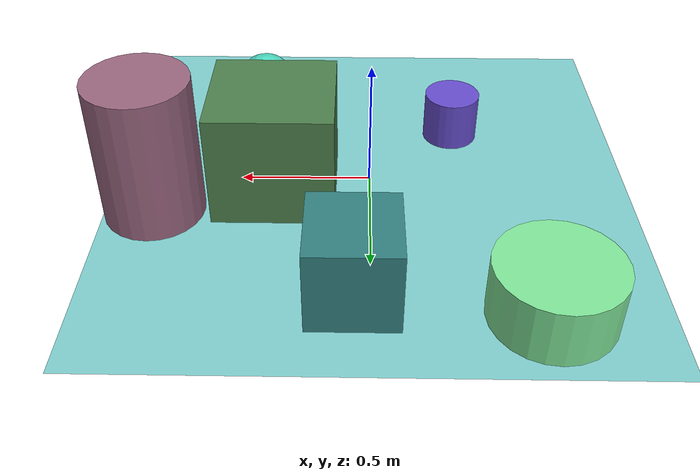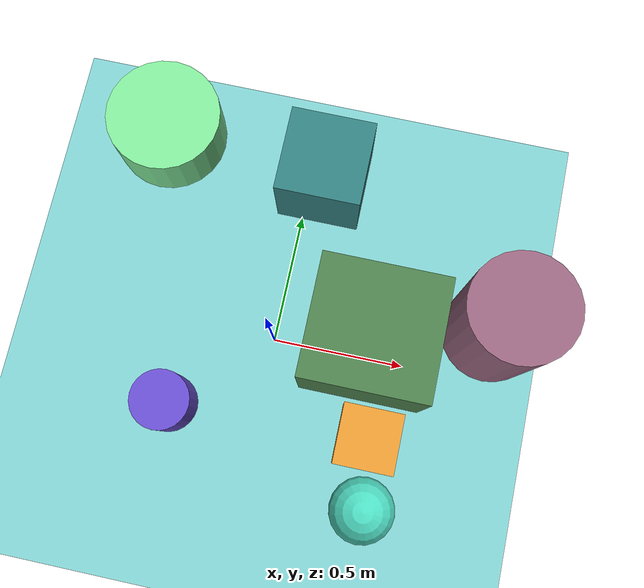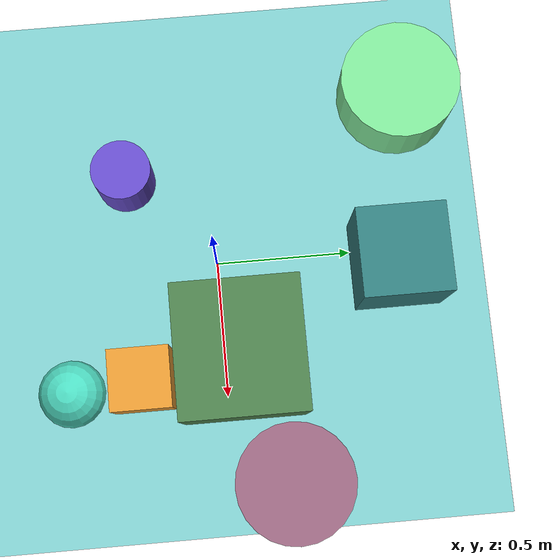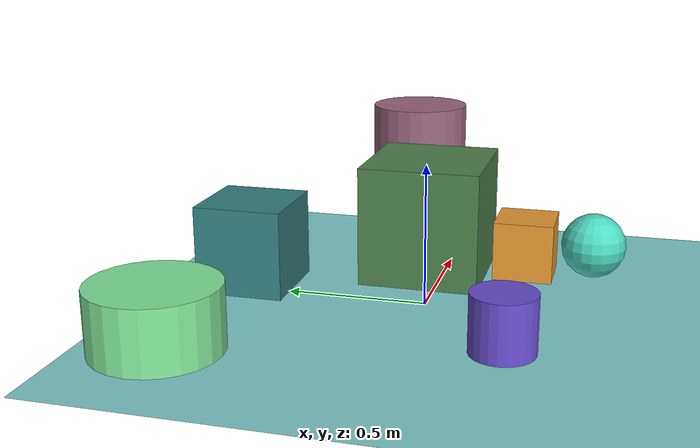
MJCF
<mujoco>
   <asset>
<texture type="skybox" builtin="gradient" rgb1="0.9 0.3 0.7" rgb2="0.7 0.4 0.0" width="256" height="256"/>
<texture name="checker_0" builtin="checker" type="2d" rgb1="0.7 0.7 0.1" rgb2="0.5 0.1 0.9" width="200" height="200"/>
<texture name="flat_1" builtin="flat" rgb1="0.2 0.5 0.5" rgb2="0.2 0.5 0.5"  width="200" height="200"/>
<texture name="checker_2" builtin="checker" type="2d" rgb1="0.8 0.6 0.7" rgb2="0.0 0.0 0.9" width="200" height="200"/>
<texture name="flat_3" builtin="flat" rgb1="0.5 0.9 0.6" rgb2="0.5 0.9 0.6"  width="200" height="200"/>
<texture name="gradient_4" builtin="gradient" rgb1="0.2 0.9 0.9" rgb2="0.4 0.8 0.6" width="200" height="200"/>
<texture name="flat_5" builtin="flat" rgb1="0.3 0.5 0.3" rgb2="0.3 0.5 0.3"  width="200" height="200"/>
<texture name="checker_6" builtin="checker" type="2d" rgb1="0.9 1.0 0.0" rgb2="0.9 0.2 0.4" width="200" height="200"/><material name="checker_0_mat" reflectance="0" texrepeat="5 5" texture="checker_0" texuniform="false" />
<material name="flat_1_mat" reflectance="0" texture="flat_1" texuniform="true"/>
<material name="checker_2_mat" reflectance="0" texrepeat="6 6" texture="checker_2" texuniform="false" />
<material name="flat_3_mat" reflectance="0" texture="flat_3" texuniform="true"/>
<material name="gradient_4_mat" reflectance="0" texture="gradient_4" texuniform="true"/>
<material name="flat_5_mat" reflectance="0" texture="flat_5" texuniform="true"/>
<material name="checker_6_mat" reflectance="0" texrepeat="7 7" texture="checker_6" texuniform="false" />
   </asset>

   <worldbody>
      <light diffuse=".9 .9 .9" pos="0 0 3" dir="0 0 -1"/>
     <geom type="plane" size="1 1 0.1" rgba="0.5 0.8 0.8 1"/>
<geom type="cylinder" pos="0.81 0.2 0.28" size="0.19 0.28 0.28" material="checker_0_mat" />
<geom type="box" pos="0.06 0.66 0.16" size="0.16 0.16 0.16" material="flat_1_mat" />
<geom type="cylinder" pos="-0.34 -0.32 0.1" size="0.11 0.1 0.1" material="checker_2_mat" />
<geom type="cylinder" pos="-0.59 0.73 0.11" size="0.22 0.11 0.11" material="flat_3_mat" />
<geom type="sphere" pos="0.45 -0.55 0.12" size="0.12 0.12 0.12" material="gradient_4_mat" />
<geom type="box" pos="0.36 0.06 0.22" size="0.23 0.22 0.22" material="flat_5_mat" />
<geom type="box" pos="0.42 -0.3 0.11" size="0.11 0.11 0.11" material="checker_6_mat" /><camera euler="60 0 180" fovy="60" name="camera_a" pos="0 -1.5 1"></camera>   </worldbody>
</mujoco>
